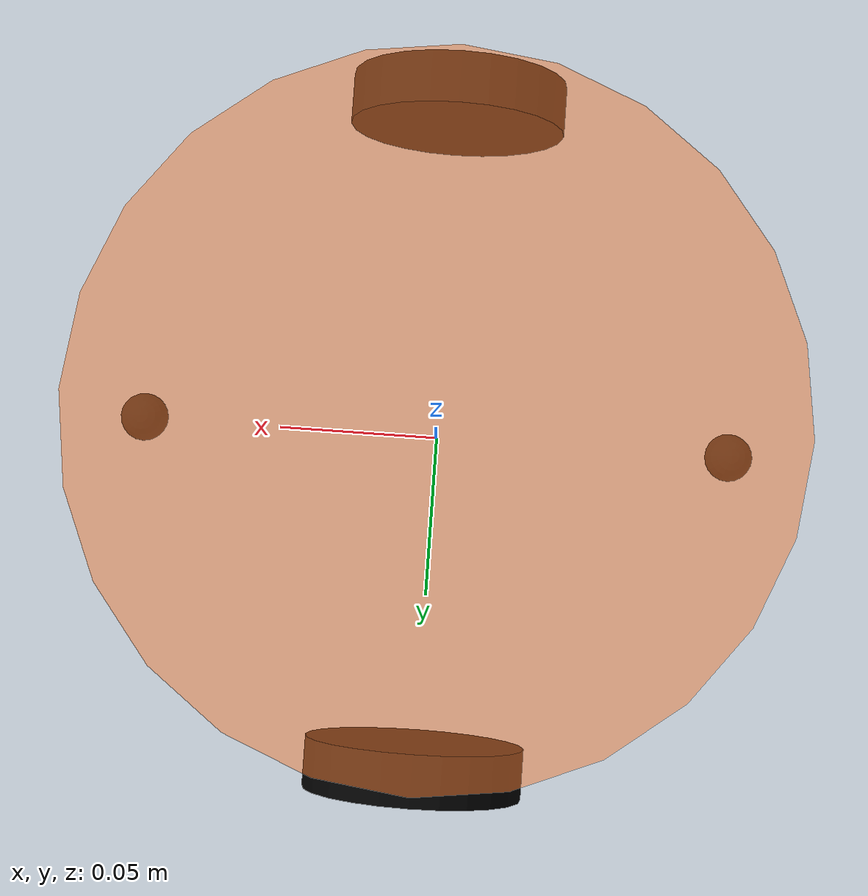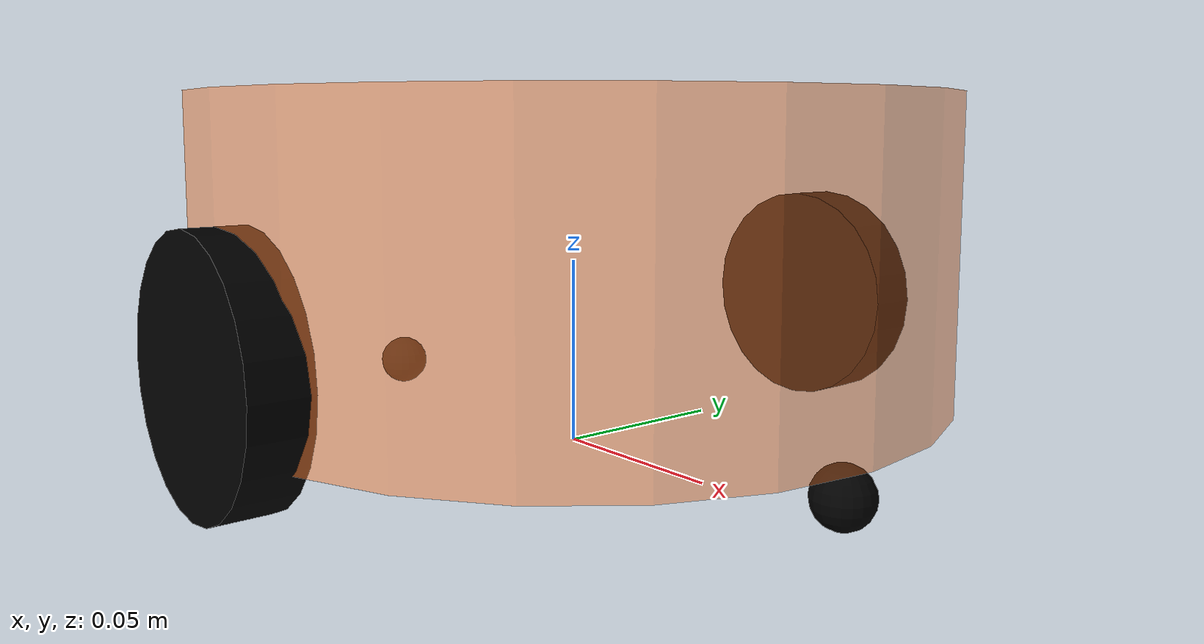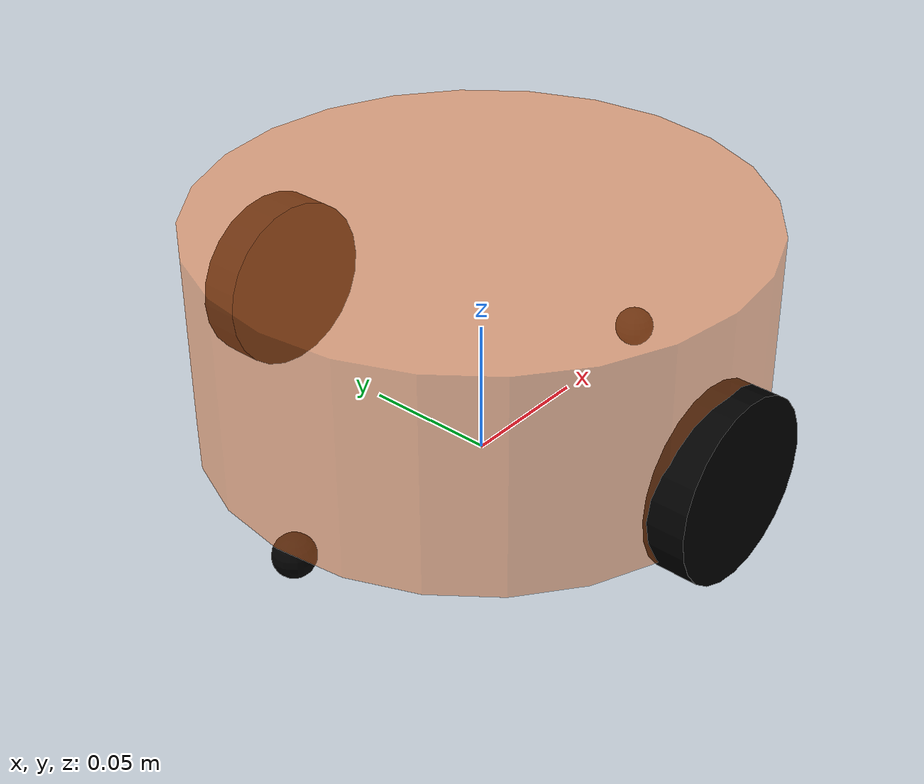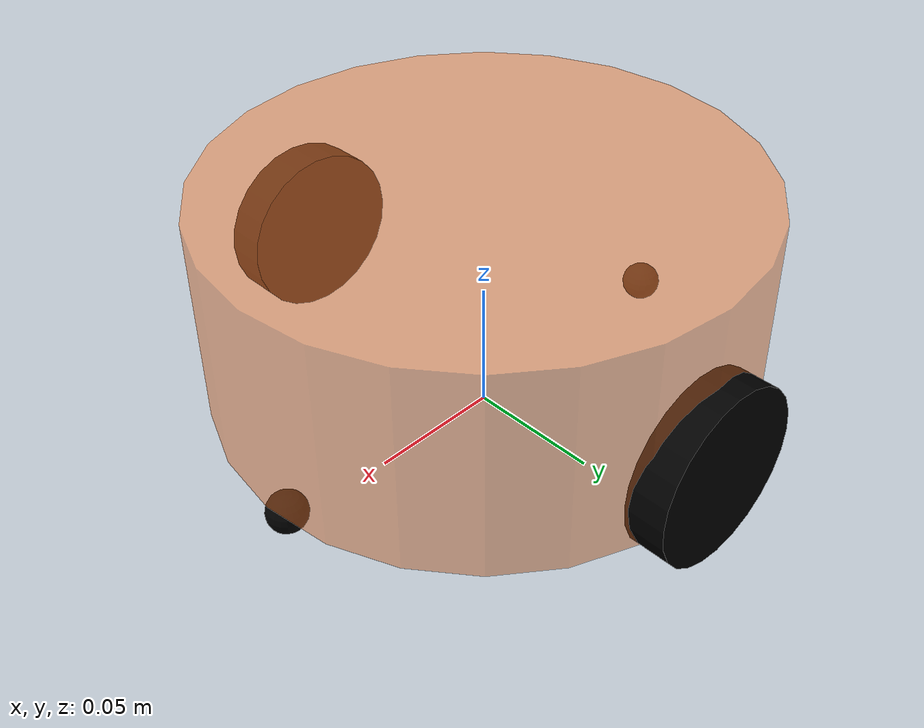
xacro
<robot name="mycar_base" xmlns:xacro="http://ros.org/wiki/xacro">

    <xacro:property name="footprint_radius" value = "0.001">
    </xacro:property>
    <link name="base_footprint">
            <geometry>
                <sphere radius="0.001"/>
            </geometry>
    </link>

    <xacro:property name="base_radius" value="0.1"/>
    <xacro:property name="base_length" value="0.08"/>
    <xacro:property name="off_earth" value="0.015"/>
    <xacro:property name="base_joint_z" value="${base_length / 2} + off_earth"/>
    <xacro:property name="base_m" value="0.5"/>

    <link name="base_link">
        <visual>
            <geometry>
                <cylinder radius="${base_radius}" length="${base_length}"/>
            </geometry>

            <origin xyz="0.0 0.0 0.0" rpy="0.0 0.0 0.0"/>

            <material name = "yellow">
                <color rgba="1.0 0.5 0.2 0.5" />
            </material>
        </visual>

        <collision>
            <geometry>
                <cylinder radius="${base_radius}" length="${base_length}" />
            </geometry>
            <origin xyz="0 0 0" rpy="0 0 0" />
        </collision>

        <xacro:cylinder_inertial_matrix m="${base_m}" r="${base_radius}" h="${base_length}" />

    </link>

    <joint name = "link2footprint" type="fixed">
        <parent link="base_footprint"/>
        <child link="base_link"/>
        <origin xyz="0.0 0.0 ${off_earth + base_length / 2 }" rpy="0.0 0.0 0.0"/>
    </joint>
    <gazebo reference="base_link">
        <material>Gazebo/Yellow</material>
    </gazebo>

    <xacro:property name="wheel_radius" value="0.0325"/>
    <xacro:property name="wheel_length" value="0.015"/>
    <xacro:property name="wheel_m" value="0.05"/>
    <xacro:property name="PI" value="3.14159"/>
    <xacro:property name="wheel_joint_z" value="${-1 * (base_length / 2 + off_earth - wheel_radius)}"/>

    <xacro:macro name="wheel_func" params="wheel_name flag">

        <link name="${wheel_name}_wheel">
            <visual>
                <geometry>
                    <cylinder radius="${wheel_radius}" length="${wheel_length}" />
                </geometry>
                <origin xyz="0 0 0" rpy="${PI / 2} 0 0" />
                <material name="black">
                    <color rgba="0.0 0.0 0.0 1.0" />
                </material>
            </visual>

            <collision>
                <geometry>
                    <cylinder radius="${wheel_radius}" length="${wheel_length}" />
                </geometry>
                <origin xyz="0.0 0.0 0.0" rpy="${PI / 2} 0.0 0.0" />
            </collision>

            <xacro:cylinder_inertial_matrix m="${wheel_m}" r="${wheel_radius}" h="${wheel_length}" />

        </link>

        <joint name="${wheel_name}_wheel2base_link" type="continuous">
            <parent link="base_link"/>
            <child link="${wheel_name}_wheel"/>
            <origin xyz="0 ${0.1 * flag} ${wheel_joint_z}"/>
            <axis xyz="0 1 0" />
        </joint>

        <gazebo reference="${wheel_name}_wheel">
            <material>Gazebo/Red</material>
        </gazebo>

    </xacro:macro>

    <xacro:wheel_func wheel_name = "left" flag = "1"/>
    <xacro:wheel_func wheel_name = "right" flag = "-1"/>

    <xacro:property name="support_wheel_radius" value="0.0075" />
    <xacro:property name="support_wheel_m" value="0.03" />
    <xacro:macro name="add_support_wheel" params="name flag" >
        <link name="${name}_wheel">
            <visual>
                <geometry>
                    <sphere radius="${support_wheel_radius}" />
                </geometry>
                <origin xyz="0 0 0" rpy="0 0 0" />
                <material name="black" />
            </visual>
            <collision>
                <geometry>
                   <sphere radius="${support_wheel_radius}" />
                </geometry>
                <origin xyz="0 0 0" rpy="0 0 0" />
            </collision>
            <xacro:sphere_inertial_matrix m="${support_wheel_m}" r="${support_wheel_radius}" />

        </link>

        <joint name="${name}_wheel2base_link" type="continuous">
            <parent link="base_link" />
            <child link="${name}_wheel" />
            <origin xyz="${flag * (base_radius - support_wheel_radius)} 0 ${-(base_length / 2 + off_earth / 2)}" />
            <axis xyz="1 1 1" />
        </joint>
        <gazebo reference="${name}_wheel">
            <material>Gazebo/Red</material>
        </gazebo>
    </xacro:macro>

    <xacro:add_support_wheel name="front" flag="1" />
    <xacro:add_support_wheel name="back" flag="-1" />

</robot>
